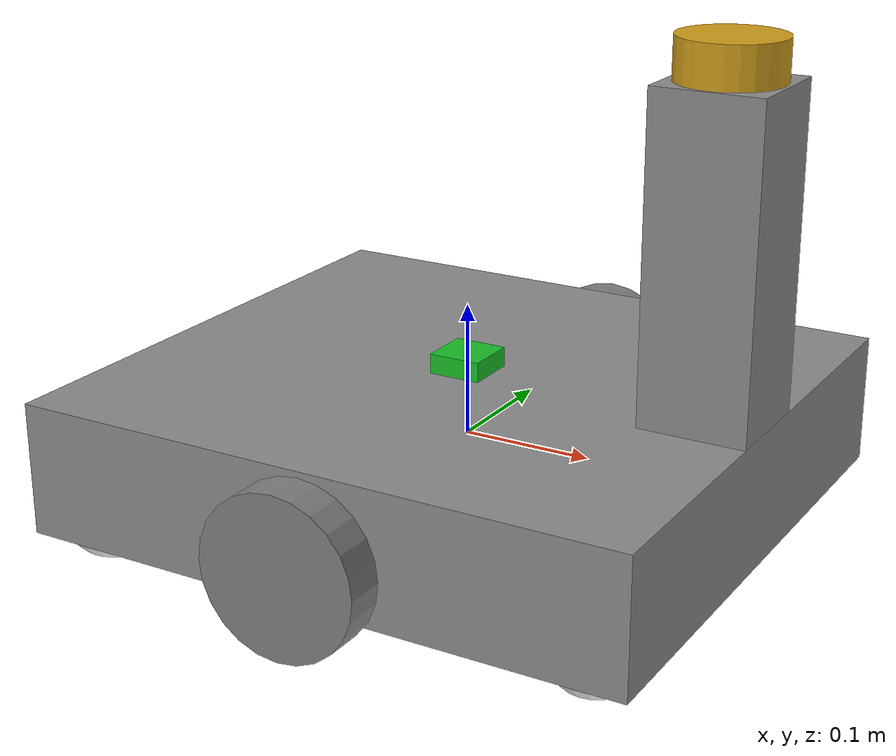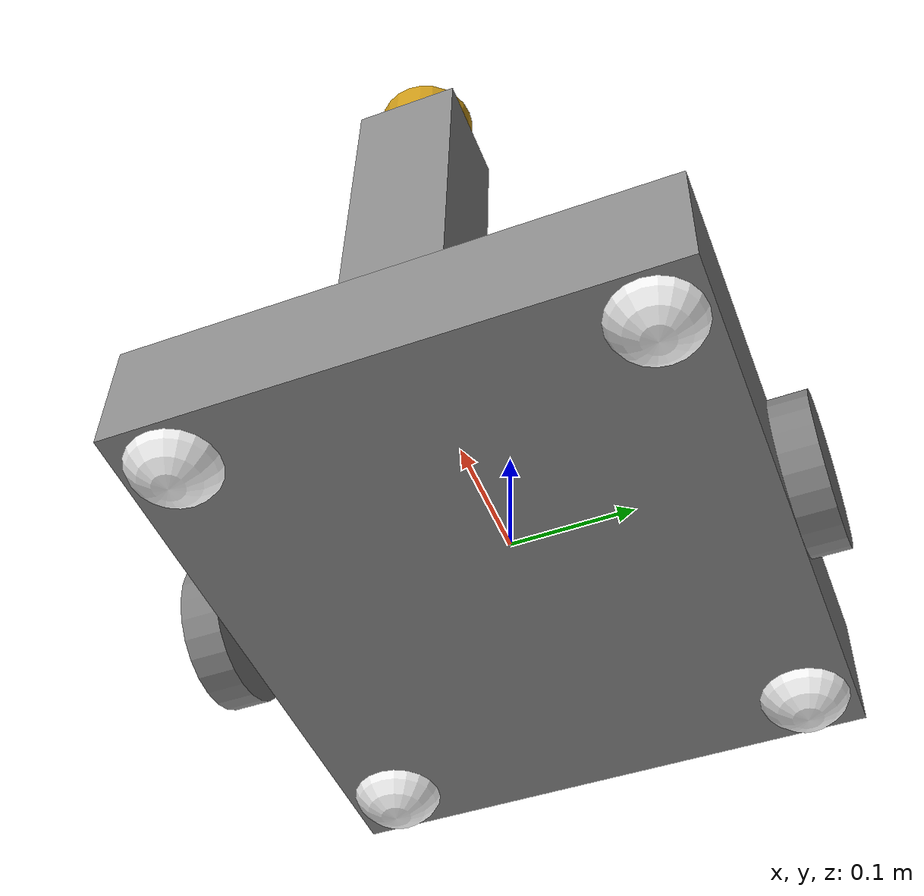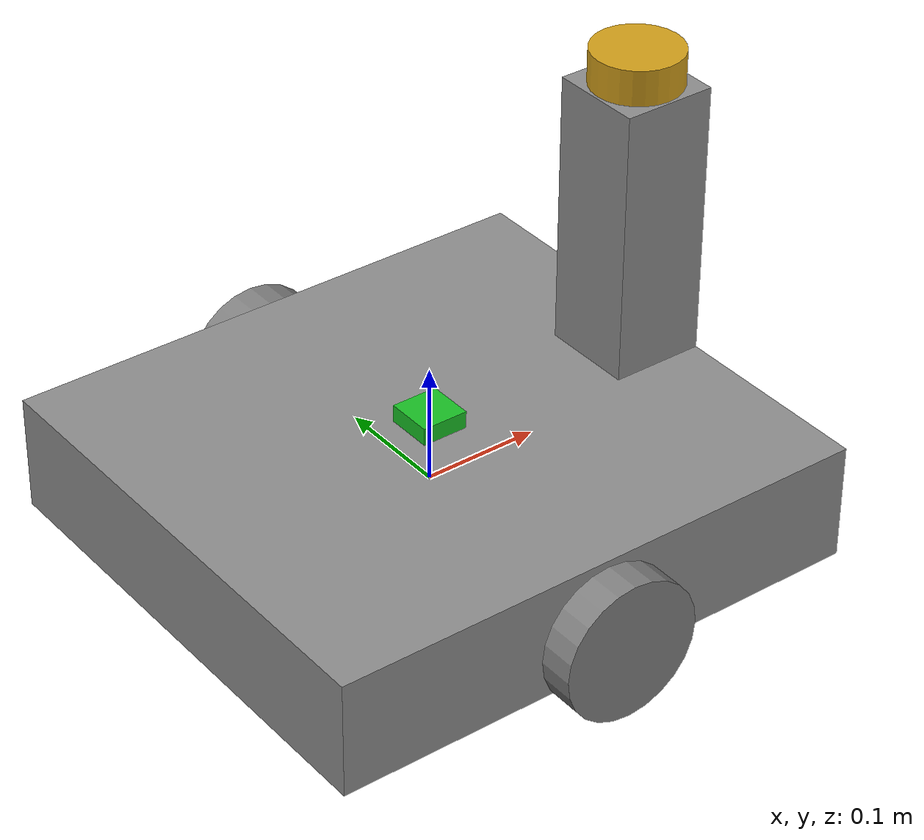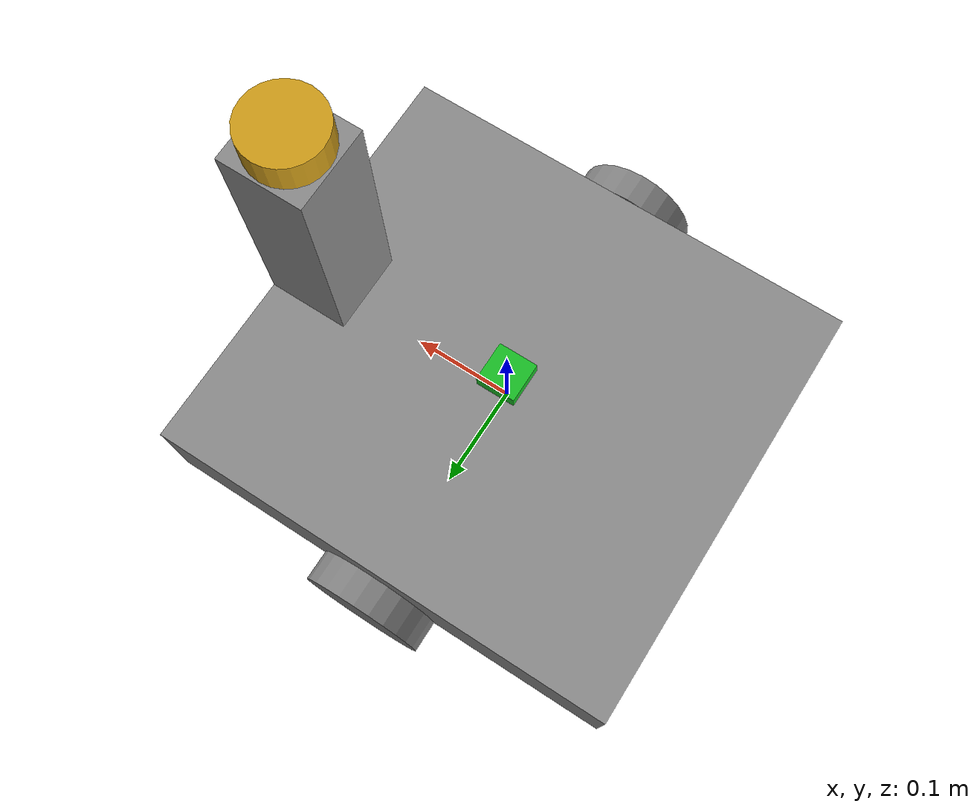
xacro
<?xml version="1.0"?>
<robot name="amr_robot" xmlns:xacro="http://www.ros.org/wiki/xacro">

  <!--xacro:include filename="$(find amr_description)/urdf/amr_geometry.xacro"-->
  <!--xacro:include filename="$(find amr_description)/urdf/amr_gazebo.xacro"-->

  <xacro:include filename="$(find amr_description)/urdf/amr_real_v2.urdf.xacro"/>
  <xacro:include filename="$(find amr_description)/urdf/amr_real_sim.urdf.xacro"/>

</robot>

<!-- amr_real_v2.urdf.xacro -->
<robot name="amr_robot" xmlns:xacro="http://www.ros.org/wiki/xacro">

  <!-- AMR REAL ROBOT GEOMETRY                                   -->
  <!-- Root body frame: base_link                                -->
  <!-- Convention: +x forward, +y left, +z up                    -->
  <!-- All dimensions in meters                                  -->

  <!-- ===================== CONSTANTS ========================= -->
  <xacro:property name="pi_num" value="3.1415926535897931"/>

  <!-- ===================== BASE ============================== -->
  <xacro:property name="base_length" value="0.47"/>
  <xacro:property name="base_width"  value="0.43"/>
  <xacro:property name="base_height" value="0.10"/>
  <xacro:property name="ground_clearance" value="0.023"/>
  <xacro:property name="base_mass" value="4.0"/>

  <!-- center of base_link from ground -->
  <xacro:property name="base_link_z" value="${ground_clearance + base_height/2.0}"/>
  <!-- top surface of body from ground -->
  <xacro:property name="body_top_z" value="${ground_clearance + base_height}"/>

  <!-- ===================== DRIVE WHEELS ====================== -->
  <xacro:property name="wheel_radius" value="0.06"/>
  <xacro:property name="wheel_width"  value="0.03"/>
  <xacro:property name="wheel_mass"   value="0.1"/>
  <xacro:property name="wheel_separation" value="0.465"/>

  <xacro:property name="wheel_x" value="0.0"/>
  <xacro:property name="wheel_y" value="${wheel_separation/2.0}"/>
  <!-- wheel axle center in base_link frame -->
  <xacro:property name="wheel_z" value="${wheel_radius - base_link_z}"/>

  <!-- ===================== CASTERS =========================== -->
  <xacro:property name="caster_radius" value="0.04"/>
  <xacro:property name="caster_width"  value="0.03"/>
  <xacro:property name="caster_mass"   value="0.1"/>

  <xacro:property name="caster_x_front" value="${ base_length/2.0 - caster_radius }"/>
  <xacro:property name="caster_x_rear"  value="${-base_length/2.0 + caster_radius }"/>
  <xacro:property name="caster_y_left"  value="${ base_width/2.0  - caster_radius }"/>
  <xacro:property name="caster_y_right" value="${-base_width/2.0  + caster_radius }"/>
  <xacro:property name="caster_z" value="${caster_radius - base_link_z}"/>

  <!-- ===================== LIDAR ============================= -->
  <xacro:property name="lidar_pole_width"  value="0.08"/>
  <xacro:property name="lidar_pole_length" value="0.08"/>
  <xacro:property name="lidar_pole_height" value="0.235"/>
  <!-- pole box center in base_link frame -->
  <xacro:property name="lidar_pole_center" value="${body_top_z + lidar_pole_height/2.0 - base_link_z}"/>

  <xacro:property name="lidar_radius" value="0.038"/>
  <xacro:property name="lidar_height" value="0.03"/>
  <xacro:property name="lidar_x" value="0.195"/>
  <xacro:property name="lidar_y" value="0.0"/>
  <!-- lidar center in base_link frame -->
  <xacro:property name="lidar_center" value="${body_top_z + lidar_pole_height + lidar_height/2.0 - base_link_z}"/>

  <xacro:property name="lidar_roll"  value="0.0"/>
  <xacro:property name="lidar_pitch" value="0.0"/>
  <xacro:property name="lidar_yaw"   value="${pi_num}"/>

  <!-- ===================== IMU =============================== -->
  <xacro:property name="imu_size_x" value="0.04"/>
  <xacro:property name="imu_size_y" value="0.04"/>
  <xacro:property name="imu_size_z" value="0.015"/>
  <xacro:property name="imu_mass"   value="0.01"/>

  <xacro:property name="imu_x" value="0.0"/>
  <xacro:property name="imu_y" value="0.0"/>
  <!-- imu center in base_link frame -->
  <xacro:property name="imu_center" value="${body_top_z + imu_size_z/2.0 - base_link_z}"/>

  <xacro:property name="imu_roll"  value="0.0"/>
  <xacro:property name="imu_pitch" value="0.0"/>
  <xacro:property name="imu_yaw"   value="0.0"/>

  <!-- ===================== MATERIALS ========================= -->
  <material name="base_black">
    <color rgba="0.55 0.55 0.55 1.0"/>
  </material>

  <material name="drive_grey">
    <color rgba="0.50 0.50 0.50 1.0"/>
  </material>

  <material name="caster_white">
    <color rgba="0.96 0.96 0.96 1.0"/>
  </material>

  <material name="lidar_gold">
    <color rgba="0.82 0.62 0.10 1.0"/>
  </material>

  <material name="imu_green">
    <color rgba="0.10 0.75 0.15 1.0"/>
  </material>

  <!-- ===================== MACROS ============================ -->
  <xacro:macro name="box_inertial" params="mass x y z">
    <inertial>
      <mass value="${mass}"/>
      <origin xyz="0 0 0" rpy="0 0 0"/>
      <inertia
        ixx="${(mass/12.0) * (y*y + z*z)}"
        ixy="0.0"
        ixz="0.0"
        iyy="${(mass/12.0) * (x*x + z*z)}"
        iyz="0.0"
        izz="${(mass/12.0) * (x*x + y*y)}"/>
    </inertial>
  </xacro:macro>

  <xacro:macro name="cylinder_y_inertial" params="mass radius length">
    <inertial>
      <mass value="${mass}"/>
      <origin xyz="0 0 0" rpy="0 0 0"/>
      <inertia
        ixx="${(mass/12.0) * (3.0*radius*radius + length*length)}"
        ixy="0.0"
        ixz="0.0"
        iyy="${0.5 * mass * radius * radius}"
        iyz="0.0"
        izz="${(mass/12.0) * (3.0*radius*radius + length*length)}"/>
    </inertial>
  </xacro:macro>

  <xacro:macro name="sphere_inertial" params="mass radius">
    <inertial>
      <mass value="${mass}"/>
      <origin xyz="0 0 0" rpy="0 0 0"/>
      <inertia
        ixx="${0.4 * mass * radius * radius}"
        ixy="0.0"
        ixz="0.0"
        iyy="${0.4 * mass * radius * radius}"
        iyz="0.0"
        izz="${0.4 * mass * radius * radius}"/>
    </inertial>
  </xacro:macro>

  <!-- ===================== BASE LINK ========================= -->
  <link name="base_link">
    <visual>
      <origin xyz="0 0 0" rpy="0 0 0"/>
      <geometry>
        <box size="${base_length} ${base_width} ${base_height}"/>
      </geometry>
      <material name="base_black"/>
    </visual>

    <collision>
      <origin xyz="0 0 0" rpy="0 0 0"/>
      <geometry>
        <box size="${base_length} ${base_width} ${base_height}"/>
      </geometry>
    </collision>

    <xacro:box_inertial mass="${base_mass}" x="${base_length}" y="${base_width}" z="${base_height}"/>
  </link>

  <!-- ===================== LEFT DRIVE WHEEL ================== -->
  <link name="left_wheel_link">
    <visual>
      <origin xyz="0 0 0" rpy="${-pi_num/2} 0 0"/>
      <geometry>
        <cylinder radius="${wheel_radius}" length="${wheel_width}"/>
      </geometry>
      <material name="drive_grey"/>
    </visual>

    <collision>
      <origin xyz="0 0 0" rpy="${-pi_num/2} 0 0"/>
      <geometry>
        <cylinder radius="${wheel_radius}" length="${wheel_width}"/>
      </geometry>
    </collision>

    <xacro:cylinder_y_inertial mass="${wheel_mass}" radius="${wheel_radius}" length="${wheel_width}"/>
  </link>

  <joint name="left_wheel_joint" type="continuous">
    <parent link="base_link"/>
    <child link="left_wheel_link"/>
    <origin xyz="${wheel_x} ${wheel_y} ${wheel_z}" rpy="0 0 0"/>
    <axis xyz="0 1 0"/>
  </joint>

  <!-- ===================== RIGHT DRIVE WHEEL ================= -->
  <link name="right_wheel_link">
    <visual>
      <origin xyz="0 0 0" rpy="${-pi_num/2} 0 0"/>
      <geometry>
        <cylinder radius="${wheel_radius}" length="${wheel_width}"/>
      </geometry>
      <material name="drive_grey"/>
    </visual>

    <collision>
      <origin xyz="0 0 0" rpy="${-pi_num/2} 0 0"/>
      <geometry>
        <cylinder radius="${wheel_radius}" length="${wheel_width}"/>
      </geometry>
    </collision>

    <xacro:cylinder_y_inertial mass="${wheel_mass}" radius="${wheel_radius}" length="${wheel_width}"/>
  </link>

  <joint name="right_wheel_joint" type="continuous">
    <parent link="base_link"/>
    <child link="right_wheel_link"/>
    <origin xyz="${wheel_x} ${-wheel_y} ${wheel_z}" rpy="0 0 0"/>
    <axis xyz="0 1 0"/>
  </joint>

  <!-- ===================== CASTERS =========================== -->
  <link name="front_left_caster_link">
    <visual>
      <origin xyz="0 0 0" rpy="0 0 0"/>
      <geometry>
        <sphere radius="${caster_radius}"/>
      </geometry>
      <material name="caster_white"/>
    </visual>
    <collision>
      <origin xyz="0 0 0" rpy="0 0 0"/>
      <geometry>
        <sphere radius="${caster_radius}"/>
      </geometry>
    </collision>
    <xacro:sphere_inertial mass="${caster_mass}" radius="${caster_radius}"/>
  </link>

  <joint name="front_left_caster_joint" type="fixed">
    <parent link="base_link"/>
    <child link="front_left_caster_link"/>
    <origin xyz="${caster_x_front} ${caster_y_left} ${caster_z}" rpy="0 0 0"/>
  </joint>

  <link name="front_right_caster_link">
    <visual>
      <origin xyz="0 0 0" rpy="0 0 0"/>
      <geometry>
        <sphere radius="${caster_radius}"/>
      </geometry>
      <material name="caster_white"/>
    </visual>
    <collision>
      <origin xyz="0 0 0" rpy="0 0 0"/>
      <geometry>
        <sphere radius="${caster_radius}"/>
      </geometry>
    </collision>
    <xacro:sphere_inertial mass="${caster_mass}" radius="${caster_radius}"/>
  </link>

  <joint name="front_right_caster_joint" type="fixed">
    <parent link="base_link"/>
    <child link="front_right_caster_link"/>
    <origin xyz="${caster_x_front} ${caster_y_right} ${caster_z}" rpy="0 0 0"/>
  </joint>

  <link name="rear_left_caster_link">
    <visual>
      <origin xyz="0 0 0" rpy="0 0 0"/>
      <geometry>
        <sphere radius="${caster_radius}"/>
      </geometry>
      <material name="caster_white"/>
    </visual>
    <collision>
      <origin xyz="0 0 0" rpy="0 0 0"/>
      <geometry>
        <sphere radius="${caster_radius}"/>
      </geometry>
    </collision>
    <xacro:sphere_inertial mass="${caster_mass}" radius="${caster_radius}"/>
  </link>

  <joint name="rear_left_caster_joint" type="fixed">
    <parent link="base_link"/>
    <child link="rear_left_caster_link"/>
    <origin xyz="${caster_x_rear} ${caster_y_left} ${caster_z}" rpy="0 0 0"/>
  </joint>

  <link name="rear_right_caster_link">
    <visual>
      <origin xyz="0 0 0" rpy="0 0 0"/>
      <geometry>
        <sphere radius="${caster_radius}"/>
      </geometry>
      <material name="caster_white"/>
    </visual>
    <collision>
      <origin xyz="0 0 0" rpy="0 0 0"/>
      <geometry>
        <sphere radius="${caster_radius}"/>
      </geometry>
    </collision>
    <xacro:sphere_inertial mass="${caster_mass}" radius="${caster_radius}"/>
  </link>

  <joint name="rear_right_caster_joint" type="fixed">
    <parent link="base_link"/>
    <child link="rear_right_caster_link"/>
    <origin xyz="${caster_x_rear} ${caster_y_right} ${caster_z}" rpy="0 0 0"/>
  </joint>

  <!-- ===================== LIDAR MAST ======================== -->
  <link name="lidar_pole_link">
    <visual>
      <origin xyz="0 0 0" rpy="0 0 0"/>
      <geometry>
        <box size="${lidar_pole_width} ${lidar_pole_length} ${lidar_pole_height}"/>
      </geometry>
      <material name="base_black"/>
    </visual>

    <collision>
      <origin xyz="0 0 0" rpy="0 0 0"/>
      <geometry>
        <box size="${lidar_pole_width} ${lidar_pole_length} ${lidar_pole_height}"/>
      </geometry>
    </collision>

    <xacro:box_inertial mass="0.05" x="${lidar_pole_width}" y="${lidar_pole_length}" z="${lidar_pole_height}"/>
  </link>

  <joint name="lidar_pole_joint" type="fixed">
    <parent link="base_link"/>
    <child link="lidar_pole_link"/>
    <origin xyz="${lidar_x} ${lidar_y} ${lidar_pole_center}" rpy="0 0 0"/>
  </joint>

  <!-- ===================== LIDAR BODY ======================== -->
  <link name="lidar_link">
    <visual>
      <origin xyz="0 0 0" rpy="0 0 0"/>
      <geometry>
        <cylinder radius="${lidar_radius}" length="${lidar_height}"/>
      </geometry>
      <material name="lidar_gold"/>
    </visual>

    <collision>
      <origin xyz="0 0 0" rpy="0 0 0"/>
      <geometry>
        <cylinder radius="${lidar_radius}" length="${lidar_height}"/>
      </geometry>
    </collision>

    <xacro:box_inertial mass="0.15" x="${2.0*lidar_radius}" y="${2.0*lidar_radius}" z="${lidar_height}"/>
  </link>

  <joint name="lidar_joint" type="fixed">
    <parent link="lidar_pole_link"/>
    <child link="lidar_link"/>
    <origin xyz="0 0 ${lidar_pole_height/2.0 + lidar_height/2.0}" rpy="${lidar_roll} ${lidar_pitch} ${lidar_yaw}"/>
  </joint>

  <!-- ===================== IMU =============================== -->
  <link name="imu_link">
    <visual>
      <origin xyz="0 0 0" rpy="0 0 0"/>
      <geometry>
        <box size="${imu_size_x} ${imu_size_y} ${imu_size_z}"/>
      </geometry>
      <material name="imu_green"/>
    </visual>

    <collision>
      <origin xyz="0 0 0" rpy="0 0 0"/>
      <geometry>
        <box size="${imu_size_x} ${imu_size_y} ${imu_size_z}"/>
      </geometry>
    </collision>

    <xacro:box_inertial mass="${imu_mass}" x="${imu_size_x}" y="${imu_size_y}" z="${imu_size_z}"/>
  </link>

  <joint name="imu_joint" type="fixed">
    <parent link="base_link"/>
    <child link="imu_link"/>
    <origin xyz="${imu_x} ${imu_y} ${imu_center}" rpy="${imu_roll} ${imu_pitch} ${imu_yaw}"/>
  </joint>

</robot>
